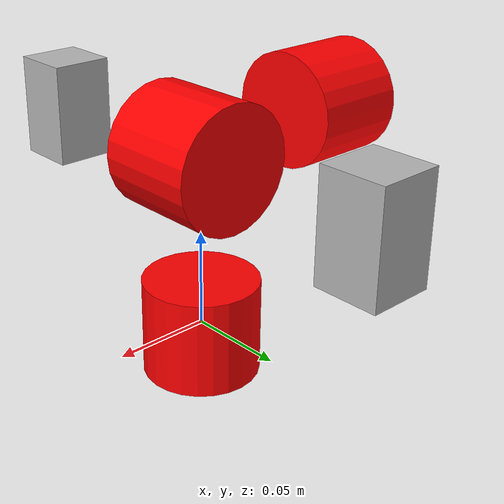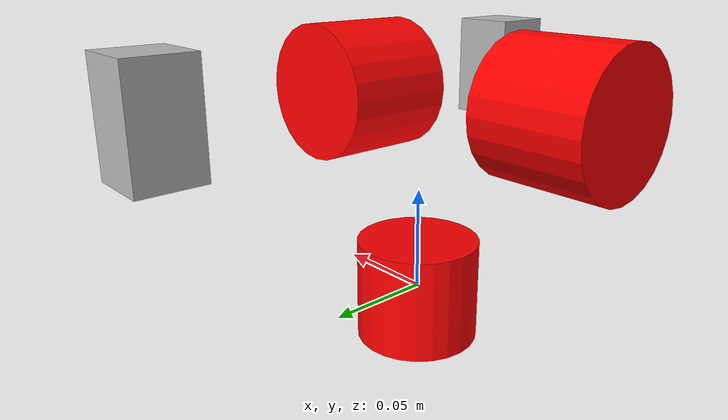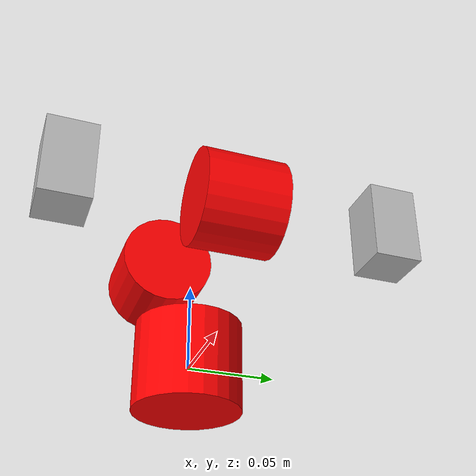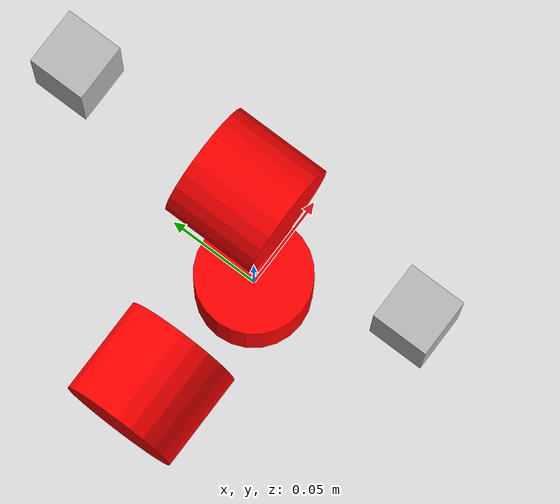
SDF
<?xml version="1.0"?>
<sdf version="1.9">
  <model name="gimbal">

    <!-- Gimbal base -->
    <link name="gimbal_base">
      <gravity>0</gravity>
      <pose>0.0 0.0 0.0 0.0 0.0 0.0</pose>
    </link>

    <!-- Gimbal yaw -->
    <link name="gimbal_yaw">
      <gravity>0</gravity>
      <pose>0.0 0.0 0.0 0.0 0.0 0.0</pose>

      <inertial>
        <inertia>
          <ixx>0.032</ixx>
          <ixy>0</ixy>
          <ixz>0</ixz>
          <iyy>0.032</iyy>
          <iyz>0</iyz>
          <izz>0.00012</izz>
        </inertia>
        <mass>0.200</mass>
      </inertial>

      <visual name="visual">
        <geometry>
          <cylinder>
            <radius>0.03</radius>
            <length>0.05</length>
          </cylinder>
        </geometry>

        <material>
            <ambient>1.0 0.0 0.0 1</ambient>
            <diffuse>1.0 0.0 0.0 1</diffuse>
            <specular>1.0 0.0 0.0 1</specular>
        </material>
      </visual>
    </link>

    <!-- Gimbal Roll -->
    <link name="gimbal_roll">
      <gravity>0</gravity>
      <pose relative_to="gimbal_yaw">-0.08 0 0.1 0 1.5708 0</pose>

      <inertial>
        <inertia>
          <ixx>0.032</ixx>
          <ixy>0</ixy>
          <ixz>0</ixz>
          <iyy>0.032</iyy>
          <iyz>0</iyz>
          <izz>0.00012</izz>
        </inertia>
        <mass>0.200</mass>
      </inertial>

      <visual name="visual">
        <geometry>
          <cylinder>
            <radius>0.03</radius>
            <length>0.05</length>
          </cylinder>
        </geometry>

        <material>
            <ambient>1.0 0.0 0.0 1</ambient>
            <diffuse>1.0 0.0 0.0 1</diffuse>
            <specular>1.0 0.0 0.0 1</specular>
        </material>
      </visual>
    </link>

    <!-- Gimbal pitch -->
    <link name="gimbal_pitch">
      <gravity>0</gravity>
      <pose relative_to="gimbal_roll">0 0.02 0.1 1.5708 0 0</pose>

      <inertial>
        <inertia>
          <ixx>0.032</ixx>
          <ixy>0</ixy>
          <ixz>0</ixz>
          <iyy>0.032</iyy>
          <iyz>0</iyz>
          <izz>0.00012</izz>
        </inertia>
        <mass>0.200</mass>
      </inertial>

      <visual name="visual">
        <geometry>
          <cylinder>
            <radius>0.03</radius>
            <length>0.05</length>
          </cylinder>
        </geometry>

        <material>
            <ambient>1.0 0.0 0.0 1</ambient>
            <diffuse>1.0 0.0 0.0 1</diffuse>
            <specular>1.0 0.0 0.0 1</specular>
        </material>
      </visual>
    </link>

    <!-- camera0 -->
    <link name="camera0">
      <gravity>0</gravity>
      <pose relative_to="gimbal_pitch">0 0 -0.1 -1.5708 0 0</pose>

      <inertial>
        <inertia>
          <ixx>0.032</ixx>
          <ixy>0</ixy>
          <ixz>0</ixz>
          <iyy>0.032</iyy>
          <iyz>0</iyz>
          <izz>0.00012</izz>
        </inertia>
        <mass>0.08</mass>
      </inertial>

      <visual name="visual">
        <pose>0.0 0.0 0.0 0 0 0</pose>
        <geometry>
          <box>
            <size>0.05 0.03 0.03</size>
          </box>
        </geometry>
      </visual>

      <collision name="collision">
        <pose>0.0 0.0 0.0 0 0 0</pose>
        <geometry>
          <box>
            <size>0.05 0.03 0.03</size>
          </box>
        </geometry>
      </collision>

      <sensor name="camera0" type="camera">
        <topic>/gimbal/camera0</topic>
        <camera>
          <horizontal_fov>1.047</horizontal_fov>
          <image>
            <width>640</width>
            <height>640</height>
          </image>
        </camera>

        <always_on>1</always_on>
        <update_rate>20</update_rate>
        <visualize>true</visualize>
      </sensor>
    </link>

    <!-- camera1 -->
    <link name="camera1">
      <gravity>0</gravity>
      <pose relative_to="gimbal_pitch">0 0 0.1 -1.5708 0 0</pose>

      <inertial>
        <inertia>
          <ixx>0.032</ixx>
          <ixy>0</ixy>
          <ixz>0</ixz>
          <iyy>0.032</iyy>
          <iyz>0</iyz>
          <izz>0.00012</izz>
        </inertia>
        <mass>0.08</mass>
      </inertial>

      <visual name="visual">
        <pose>0.0 0.0 0.0 0 0 0</pose>
        <geometry>
          <box>
            <size>0.05 0.03 0.03</size>
          </box>
        </geometry>
      </visual>

      <collision name="collision">
        <pose>0.0 0.0 0.0 0 0 0</pose>
        <geometry>
          <box>
            <size>0.05 0.03 0.03</size>
          </box>
        </geometry>
      </collision>

      <sensor name="camera1" type="camera">
        <topic>/gimbal/camera1</topic>
        <camera>
          <horizontal_fov>1.047</horizontal_fov>
          <image>
            <width>640</width>
            <height>640</height>
          </image>
        </camera>

        <always_on>1</always_on>
        <update_rate>20</update_rate>
        <visualize>true</visualize>
      </sensor>
    </link>

    <!-- World to gimbal base joint  -->
    <joint name="world_fixed" type="fixed">
      <parent>world</parent>
      <child>gimbal_base</child>
    </joint>

    <!-- Yaw joint -->
    <joint name="joint_yaw" type="revolute">
      <pose>0.0 0.0 0.0 0.0 0.0 0.0</pose>
      <parent>gimbal_base</parent>
      <child>gimbal_yaw</child>
      <axis>
        <xyz>0 0 1</xyz>
        <dynamics>
          <damping>1.0</damping>
        </dynamics>
      </axis>
    </joint>
    <plugin
        filename="gz-sim-joint-position-controller-system"
        name="gz::sim::systems::JointPositionController">
      <joint_name>joint_yaw</joint_name>
      <topic>/gimbal/joint0_cmd</topic>
      <p_gain>10</p_gain>
      <i_gain>0.01</i_gain>
      <d_gain>0.5</d_gain>
      <i_max>1</i_max>
      <i_min>-1</i_min>
      <cmd_max>1000</cmd_max>
      <cmd_min>-1000</cmd_min>
    </plugin>
    <plugin
        filename="gz-sim-joint-state-publisher-system"
        name="gz::sim::systems::JointStatePublisher">
      <joint_name>joint_yaw</joint_name>
      <topic>/gimbal/joint0_state</topic>
    </plugin>

    <!-- Roll joint -->
    <joint name="joint_roll" type="revolute">
      <pose>0 0.0 0 0 0 0</pose>
      <parent>gimbal_yaw</parent>
      <child>gimbal_roll</child>
      <axis>
        <xyz>0 0 1</xyz>
        <dynamics>
          <damping>1.0</damping>
        </dynamics>
      </axis>
    </joint>
    <plugin
        filename="gz-sim-joint-position-controller-system"
        name="gz::sim::systems::JointPositionController">
      <joint_name>joint_roll</joint_name>
      <topic>/gimbal/joint1_cmd</topic>
      <p_gain>10</p_gain>
      <i_gain>0.01</i_gain>
      <d_gain>0.5</d_gain>
      <i_max>1</i_max>
      <i_min>-1</i_min>
      <cmd_max>1000</cmd_max>
      <cmd_min>-1000</cmd_min>
    </plugin>
    <plugin
        filename="gz-sim-joint-state-publisher-system"
        name="gz::sim::systems::JointStatePublisher">
      <joint_name>joint_roll</joint_name>
      <topic>/gimbal/joint1_state</topic>
    </plugin>

    <!-- Pitch joint -->
    <joint name="joint_pitch" type="revolute">
      <pose>0 0.0 0 0 0 0</pose>
      <parent>gimbal_roll</parent>
      <child>gimbal_pitch</child>
      <axis>
        <xyz>0 0 1</xyz>
        <dynamics>
          <damping>1.0</damping>
        </dynamics>
      </axis>
    </joint>
    <plugin
        filename="gz-sim-joint-position-controller-system"
        name="gz::sim::systems::JointPositionController">
      <joint_name>joint_pitch</joint_name>
      <topic>/gimbal/joint2_cmd</topic>
      <p_gain>10</p_gain>
      <i_gain>0.01</i_gain>
      <d_gain>0.5</d_gain>
      <i_max>1</i_max>
      <i_min>-1</i_min>
      <cmd_max>1000</cmd_max>
      <cmd_min>-1000</cmd_min>
    </plugin>
    <plugin
        filename="gz-sim-joint-state-publisher-system"
        name="gz::sim::systems::JointStatePublisher">
      <joint_name>joint_pitch</joint_name>
      <topic>/gimbal/joint2_state</topic>
    </plugin>

    <!-- Gimbal pitch to camera0 -->
    <joint name="camera0_extrinsic" type="fixed">
      <pose>0 0 0 0 0 0</pose>
      <parent>gimbal_pitch</parent>
      <child>camera0</child>
    </joint>

    <!-- Gimbal pitch to camera1 -->
    <joint name="camera1_extrinsic" type="fixed">
      <pose>0 0 0 0 0 0</pose>
      <parent>gimbal_pitch</parent>
      <child>camera1</child>
    </joint>

    <!-- Pose publisher -->
    <plugin
      filename="gz-sim-pose-publisher-system"
      name="gz::sim::systems::PosePublisher">
      <publish_model_pose>true</publish_model_pose>
      <publish_nested_model_pose>true</publish_nested_model_pose>
      <publish_link_pose>false</publish_link_pose>
      <publish_collision_pose>false</publish_collision_pose>
      <publish_visual_pose>false</publish_visual_pose>
    </plugin>
  </model>
</sdf>
